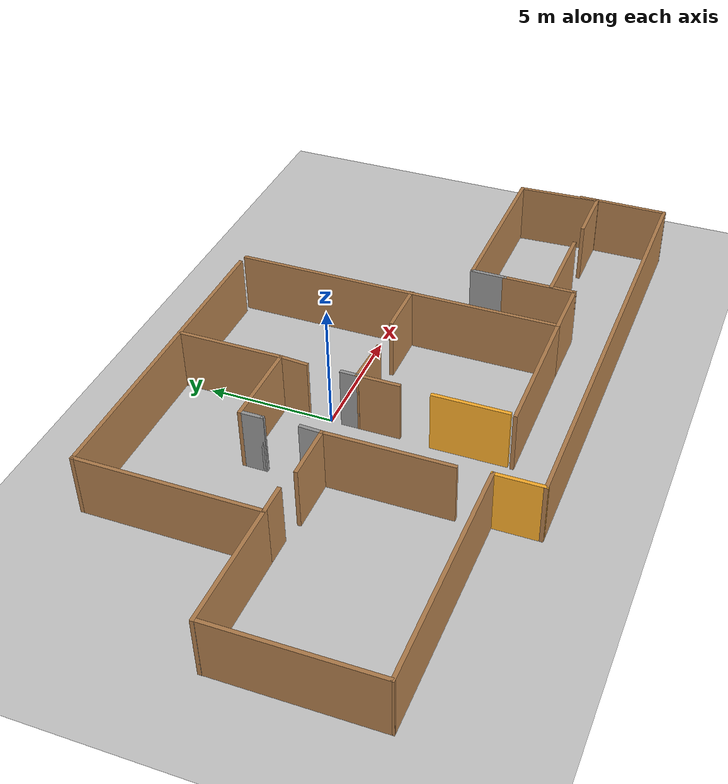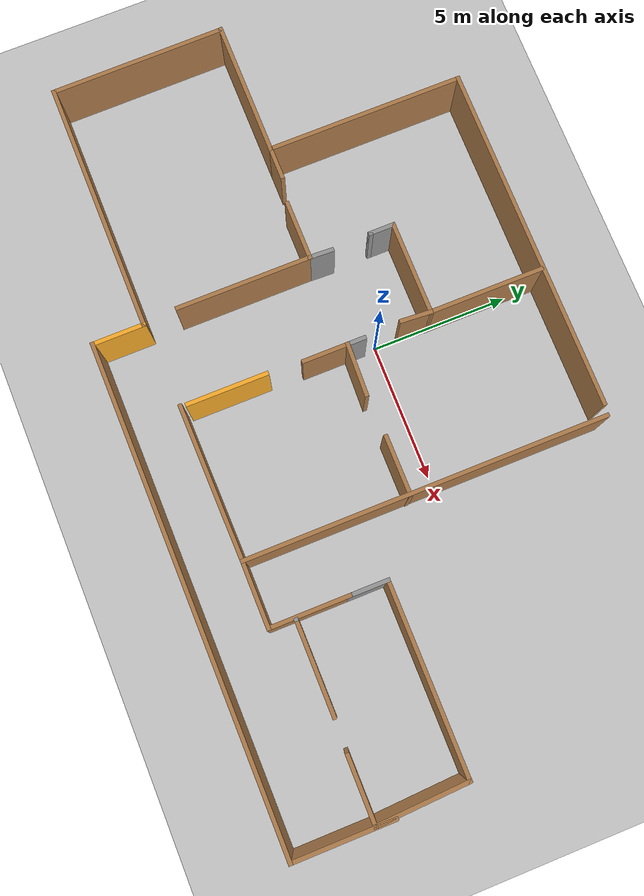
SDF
<sdf version="1.6">
 <world name="default">
  <light name="sun" type="directional">
   <pose>0 0 10 0 -0 0</pose>
   <diffuse>0.8 0.8 0.8 1</diffuse>
   <specular>0.2 0.2 0.2 1</specular>
   <attenuation>
    <range>1000</range>
    <constant>0.9</constant>
    <linear>0.01</linear>
    <quadratic>0.001</quadratic>
   </attenuation>
   <direction>-0.5 0.1 -0.9</direction>
  </light>
  <model name="ground_plane">
   <static>1</static>
   <link name="link">
    <collision name="collision">
     <geometry><plane><normal>0 0 1</normal><size>100 100</size></plane></geometry>
     <surface><friction><ode><mu>100</mu><mu2>50</mu2></ode></friction></surface>
    </collision>
    <visual name="visual">
     <cast_shadows>0</cast_shadows>
     <geometry><plane><normal>0 0 1</normal><size>100 100</size></plane></geometry>
     <material>
      <script><uri>file://media/materials/scripts/gazebo.material</uri><name>Gazebo/Grey</name></script>
     </material>
    </visual>
   </link>
  </model>
  <gravity>0 0 -9.8</gravity>
  <magnetic_field>6e-06 2.3e-05 -4.2e-05</magnetic_field>
  <atmosphere type="adiabatic"/>
  <physics name="default_physics" default="0" type="ode">
   <max_step_size>0.001</max_step_size>
   <real_time_factor>1</real_time_factor>
   <real_time_update_rate>1000</real_time_update_rate>
  </physics>
  <scene><ambient>0.4 0.4 0.4 1</ambient><background>0.7 0.7 0.7 1</background><shadows>1</shadows></scene>
  <spherical_coordinates>
   <surface_model>EARTH_WGS84</surface_model>
   <latitude_deg>0</latitude_deg>
   <longitude_deg>0</longitude_deg>
   <elevation>0</elevation>
   <heading_deg>0</heading_deg>
  </spherical_coordinates>
  <model name="final_world">
   <pose>1.30105 -1.49251 0 0 -0 0</pose>
   <link name="Wall_0">
    <collision name="Wall_0_Collision">
     <geometry><box><size>12.75 0.15 2.5</size></box></geometry>
     <pose>0 0 1.25 0 -0 0</pose>
    </collision>
    <visual name="Wall_0_Visual">
     <pose>0 0 1.25 0 -0 0</pose>
     <geometry><box><size>12.75 0.15 2.5</size></box></geometry>
     <material>
      <script><uri>file://media/materials/scripts/gazebo.material</uri><name>Gazebo/Wood</name></script>
      <ambient>1 1 1 1</ambient>
     </material>
     <meta><layer>0</layer></meta>
    </visual>
    <pose>-2.4746 7.62629 0 0 -0 3.14159</pose>
   </link>
   <link name="Wall_1">
    <collision name="Wall_1_Collision">
     <geometry><box><size>7.25 0.15 2.5</size></box></geometry>
     <pose>0 0 1.25 0 -0 0</pose>
    </collision>
    <visual name="Wall_1_Visual">
     <pose>0 0 1.25 0 -0 0</pose>
     <geometry><box><size>7.25 0.15 2.5</size></box></geometry>
     <material>
      <script><uri>file://media/materials/scripts/gazebo.material</uri><name>Gazebo/Wood</name></script>
      <ambient>1 1 1 1</ambient>
     </material>
     <meta><layer>0</layer></meta>
    </visual>
    <pose>-8.7746 4.07629 0 0 0 -1.5708</pose>
   </link>
   <link name="Wall_10">
    <collision name="Wall_10_Collision">
     <geometry><box><size>13.25 0.15 2.5</size></box></geometry>
     <pose>0 0 1.25 0 -0 0</pose>
    </collision>
    <visual name="Wall_10_Visual">
     <pose>0 0 1.25 0 -0 0</pose>
     <geometry><box><size>13.25 0.15 2.5</size></box></geometry>
     <material>
      <script><uri>file://media/materials/scripts/gazebo.material</uri><name>Gazebo/Wood</name></script>
      <ambient>1 1 1 1</ambient>
     </material>
     <meta><layer>0</layer></meta>
    </visual>
    <pose>4.22995 0.995383 0 0 0 -1.5708</pose>
   </link>
   <link name="Wall_16">
    <collision name="Wall_16_Collision">
     <geometry><box><size>2.25 0.15 2.5</size></box></geometry>
     <pose>0 0 1.25 0 -0 0</pose>
    </collision>
    <visual name="Wall_16_Visual">
     <pose>0 0 1.25 0 -0 0</pose>
     <geometry><box><size>2.25 0.15 2.5</size></box></geometry>
     <material>
      <script><uri>file://media/materials/scripts/gazebo.material</uri><name>Gazebo/Wood</name></script>
      <ambient>1 1 1 1</ambient>
     </material>
     <meta><layer>0</layer></meta>
    </visual>
    <pose>3.19936 0.396644 0 0 -0 3.14159</pose>
   </link>
   <link name="Wall_18">
    <collision name="Wall_18_Collision">
     <geometry><box><size>2.00134 0.15 2.5</size></box></geometry>
     <pose>0 0 1.25 0 -0 0</pose>
    </collision>
    <visual name="Wall_18_Visual">
     <pose>0 0 1.25 0 -0 0</pose>
     <geometry><box><size>2.00134 0.15 2.5</size></box></geometry>
     <material>
      <script><uri>file://media/materials/scripts/gazebo.material</uri><name>Gazebo/Wood</name></script>
      <ambient>1 1 1 1</ambient>
     </material>
     <meta><layer>0</layer></meta>
    </visual>
    <pose>-0.34871 0.361465 0 0 0 -0.038013</pose>
   </link>
   <link name="Wall_2">
    <collision name="Wall_2_Collision">
     <geometry><box><size>1.25 0.15 2.5</size></box></geometry>
     <pose>0 0 1.25 0 -0 0</pose>
    </collision>
    <visual name="Wall_2_Visual">
     <pose>0 0 1.25 0 -0 0</pose>
     <geometry><box><size>1.25 0.15 2.5</size></box></geometry>
     <material>
      <script><uri>file://media/materials/scripts/gazebo.material</uri><name>Gazebo/Wood</name></script>
      <ambient>1 1 1 1</ambient>
     </material>
     <meta><layer>0</layer></meta>
    </visual>
    <pose>-8.22461 0.526294 0 0 -0 0</pose>
   </link>
   <link name="Wall_22">
    <collision name="Wall_22_Collision">
     <geometry><box><size>2.25 0.15 2.5</size></box></geometry>
     <pose>0 0 1.25 0 -0 0</pose>
    </collision>
    <visual name="Wall_22_Visual">
     <pose>0 0 1.25 0 -0 0</pose>
     <geometry><box><size>2.25 0.15 2.5</size></box></geometry>
     <material>
      <script><uri>file://media/materials/scripts/gazebo.material</uri><name>Gazebo/Wood</name></script>
      <ambient>1 1 1 1</ambient>
     </material>
     <meta><layer>0</layer></meta>
    </visual>
    <pose>-5.64874 0.337631 0 0 -0 0</pose>
   </link>
   <link name="Wall_23">
    <collision name="Wall_23_Collision">
     <geometry><box><size>0.954246 0.15 2.5</size></box></geometry>
     <pose>0 0 1.25 0 -0 0</pose>
    </collision>
    <visual name="Wall_23_Visual">
     <pose>0 0 1.25 0 -0 0</pose>
     <geometry><box><size>0.954246 0.15 2.5</size></box></geometry>
     <material>
      <script><uri>file://media/materials/scripts/gazebo.material</uri><name>Gazebo/Grey</name></script>
      <ambient>1 1 1 1</ambient>
     </material>
     <meta><layer>0</layer></meta>
    </visual>
    <pose>-4.58115 0.73937 0 0 -0 1.52704</pose>
   </link>
   <link name="Wall_25">
    <collision name="Wall_25_Collision">
     <geometry><box><size>1.19603 0.15 2.5</size></box></geometry>
     <pose>0 0 1.25 0 -0 0</pose>
    </collision>
    <visual name="Wall_25_Visual">
     <pose>0 0 1.25 0 -0 0</pose>
     <geometry><box><size>1.19603 0.15 2.5</size></box></geometry>
     <material>
      <script><uri>file://media/materials/scripts/gazebo.material</uri><name>Gazebo/Wood</name></script>
      <ambient>1 1 1 1</ambient>
     </material>
     <meta><layer>0</layer></meta>
    </visual>
    <pose>-1.30804 2.92361 0 0 -0 1.50185</pose>
   </link>
   <link name="Wall_27">
    <collision name="Wall_27_Collision">
     <geometry><box><size>0.75 0.15 2.5</size></box></geometry>
     <pose>0 0 1.25 0 -0 0</pose>
    </collision>
    <visual name="Wall_27_Visual">
     <pose>0 0 1.25 0 -0 0</pose>
     <geometry><box><size>0.75 0.15 2.5</size></box></geometry>
     <material>
      <script><uri>file://media/materials/scripts/gazebo.material</uri><name>Gazebo/Grey</name></script>
      <ambient>1 1 1 1</ambient>
     </material>
     <meta><layer>0</layer></meta>
    </visual>
    <pose>-1.27371 0.696644 0 0 -0 1.5708</pose>
   </link>
   <link name="Wall_29">
    <collision name="Wall_29_Collision">
     <geometry><box><size>1.75 0.15 2.5</size></box></geometry>
     <pose>0 0 1.25 0 -0 0</pose>
    </collision>
    <visual name="Wall_29_Visual">
     <pose>0 0 1.25 0 -0 0</pose>
     <geometry><box><size>1.75 0.15 2.5</size></box></geometry>
     <material>
      <script><uri>file://media/materials/scripts/gazebo.material</uri><name>Gazebo/Wood</name></script>
      <ambient>1 1 1 1</ambient>
     </material>
     <meta><layer>0</layer></meta>
    </visual>
    <pose>-1.27371 -0.403356 0 0 0 -1.5708</pose>
   </link>
   <link name="Wall_31">
    <collision name="Wall_31_Collision">
     <geometry><box><size>3 0.15 2.5</size></box></geometry>
     <pose>0 0 1.25 0 -0 0</pose>
    </collision>
    <visual name="Wall_31_Visual">
     <pose>0 0 1.25 0 -0 0</pose>
     <geometry><box><size>3 0.15 2.5</size></box></geometry>
     <material>
      <script><uri>file://media/materials/scripts/gazebo.material</uri><name>Gazebo/Grey</name></script>
      <ambient>1 0.694118 0.168627 1</ambient>
     </material>
     <meta><layer>0</layer></meta>
    </visual>
    <pose>-1.34407 -3.95194 0 0 0 -1.5708</pose>
   </link>
   <link name="Wall_33">
    <collision name="Wall_33_Collision">
     <geometry><box><size>5.75957 0.15 2.5</size></box></geometry>
     <pose>0 0 1.25 0 -0 0</pose>
    </collision>
    <visual name="Wall_33_Visual">
     <pose>0 0 1.25 0 -0 0</pose>
     <geometry><box><size>5.75957 0.15 2.5</size></box></geometry>
     <material>
      <script><uri>file://media/materials/scripts/gazebo.material</uri><name>Gazebo/Wood</name></script>
      <ambient>1 1 1 1</ambient>
     </material>
     <meta><layer>0</layer></meta>
    </visual>
    <pose>1.42535 -5.58677 0 0 -0 0.011464</pose>
   </link>
   <link name="Wall_37">
    <collision name="Wall_37_Collision">
     <geometry><box><size>5 0.15 2.5</size></box></geometry>
     <pose>0 0 1.25 0 -0 0</pose>
    </collision>
    <visual name="Wall_37_Visual">
     <pose>0 0 1.25 0 -0 0</pose>
     <geometry><box><size>5 0.15 2.5</size></box></geometry>
     <material>
      <script><uri>file://media/materials/scripts/gazebo.material</uri><name>Gazebo/Wood</name></script>
      <ambient>1 1 1 1</ambient>
     </material>
     <meta><layer>0</layer></meta>
    </visual>
    <pose>-4.59874 -2.08737 0 0 0 -1.5708</pose>
   </link>
   <link name="Wall_39">
    <collision name="Wall_39_Collision">
     <geometry><box><size>9.25 0.15 2.5</size></box></geometry>
     <pose>0 0 1.25 0 -0 0</pose>
    </collision>
    <visual name="Wall_39_Visual">
     <pose>0 0 1.25 0 -0 0</pose>
     <geometry><box><size>9.25 0.15 2.5</size></box></geometry>
     <material>
      <script><uri>file://media/materials/scripts/gazebo.material</uri><name>Gazebo/Wood</name></script>
      <ambient>1 0.694118 0.168627 1</ambient>
     </material>
     <meta><layer>0</layer></meta>
    </visual>
    <pose>-9.02907 -5.77608 0 0 -0 3.14159</pose>
   </link>
   <link name="Wall_41">
    <collision name="Wall_41_Collision">
     <geometry><box><size>5 0.15 2.5</size></box></geometry>
     <pose>0 0 1.25 0 -0 0</pose>
    </collision>
    <visual name="Wall_41_Visual">
     <pose>0 0 1.25 0 -0 0</pose>
     <geometry><box><size>5 0.15 2.5</size></box></geometry>
     <material>
      <script><uri>file://media/materials/scripts/gazebo.material</uri><name>Gazebo/Wood</name></script>
      <ambient>1 1 1 1</ambient>
     </material>
     <meta><layer>0</layer></meta>
    </visual>
    <pose>-11.1996 0.526294 0 0 -0 3.14159</pose>
   </link>
   <link name="Wall_42">
    <collision name="Wall_42_Collision">
     <geometry><box><size>0.16 0.15 2.5</size></box></geometry>
     <pose>0 0 1.25 0 -0 0</pose>
    </collision>
    <visual name="Wall_42_Visual">
     <pose>0 0 1.25 0 -0 0</pose>
     <geometry><box><size>0.16 0.15 2.5</size></box></geometry>
     <material>
      <script><uri>file://media/materials/scripts/gazebo.material</uri><name>Gazebo/Grey</name></script>
      <ambient>1 1 1 1</ambient>
     </material>
     <meta><layer>0</layer></meta>
    </visual>
    <pose>-13.6196 0.526294 0 0 -0 0</pose>
   </link>
   <link name="Wall_43">
    <collision name="Wall_43_Collision">
     <geometry><box><size>6.45247 0.15 2.5</size></box></geometry>
     <pose>0 0 1.25 0 -0 0</pose>
    </collision>
    <visual name="Wall_43_Visual">
     <pose>0 0 1.25 0 -0 0</pose>
     <geometry><box><size>6.45247 0.15 2.5</size></box></geometry>
     <material>
      <script><uri>file://media/materials/scripts/gazebo.material</uri><name>Gazebo/Wood</name></script>
      <ambient>1 1 1 1</ambient>
     </material>
     <meta><layer>0</layer></meta>
    </visual>
    <pose>-13.5968 -2.62489 0 0 0 -1.56516</pose>
   </link>
   <link name="Wall_45">
    <collision name="Wall_45_Collision">
     <geometry><box><size>2 0.15 2.5</size></box></geometry>
     <pose>0 0 1.25 0 -0 0</pose>
    </collision>
    <visual name="Wall_45_Visual">
     <pose>0 0 1.25 0 -0 0</pose>
     <geometry><box><size>2 0.15 2.5</size></box></geometry>
     <material>
      <script><uri>file://media/materials/scripts/gazebo.material</uri><name>Gazebo/Grey</name></script>
      <ambient>1 0.694118 0.168627 1</ambient>
     </material>
     <meta><layer>0</layer></meta>
    </visual>
    <pose>-4.47907 -6.70108 0 0 0 -1.5708</pose>
   </link>
   <link name="Wall_46">
    <collision name="Wall_46_Collision">
     <geometry><box><size>18.2538 0.15 2.5</size></box></geometry>
     <pose>0 0 1.25 0 -0 0</pose>
    </collision>
    <visual name="Wall_46_Visual">
     <pose>0 0 1.25 0 -0 0</pose>
     <geometry><box><size>18.2538 0.15 2.5</size></box></geometry>
     <material>
      <script><uri>file://media/materials/scripts/gazebo.material</uri><name>Gazebo/Wood</name></script>
      <ambient>1 1 1 1</ambient>
     </material>
     <meta><layer>0</layer></meta>
    </visual>
    <pose>4.57251 -7.59984 0 0 -0 0.002898</pose>
   </link>
   <link name="Wall_47">
    <collision name="Wall_47_Collision">
     <geometry><box><size>3.75 0.15 2.5</size></box></geometry>
     <pose>0 0 1.25 0 -0 0</pose>
    </collision>
    <visual name="Wall_47_Visual">
     <pose>0 0 1.25 0 -0 0</pose>
     <geometry><box><size>3.75 0.15 2.5</size></box></geometry>
     <material>
      <script><uri>file://media/materials/scripts/gazebo.material</uri><name>Gazebo/Wood</name></script>
      <ambient>1 1 1 1</ambient>
     </material>
     <meta><layer>0</layer></meta>
    </visual>
    <pose>13.6241 -5.77361 0 0 -0 1.5708</pose>
   </link>
   <link name="Wall_49">
    <collision name="Wall_49_Collision">
     <geometry><box><size>2.5 0.15 2.5</size></box></geometry>
     <pose>0 0 1.25 0 -0 0</pose>
    </collision>
    <visual name="Wall_49_Visual">
     <pose>0 0 1.25 0 -0 0</pose>
     <geometry><box><size>2.5 0.15 2.5</size></box></geometry>
     <material>
      <script><uri>file://media/materials/scripts/gazebo.material</uri><name>Gazebo/Wood</name></script>
      <ambient>1 1 1 1</ambient>
     </material>
     <meta><layer>0</layer></meta>
    </visual>
    <pose>5.40495 -5.55462 0 0 -0 0</pose>
   </link>
   <link name="Wall_5">
    <collision name="Wall_5_Collision">
     <geometry><box><size>4.25 0.15 2.5</size></box></geometry>
     <pose>0 0 1.25 0 -0 0</pose>
    </collision>
    <visual name="Wall_5_Visual">
     <pose>0 0 1.25 0 -0 0</pose>
     <geometry><box><size>4.25 0.15 2.5</size></box></geometry>
     <material>
      <script><uri>file://media/materials/scripts/gazebo.material</uri><name>Gazebo/Wood</name></script>
      <ambient>1 1 1 1</ambient>
     </material>
     <meta><layer>0</layer></meta>
    </visual>
    <pose>-1.27201 5.49538 0 0 0 -1.5708</pose>
   </link>
   <link name="Wall_50">
    <collision name="Wall_50_Collision">
     <geometry><box><size>3 0.15 2.5</size></box></geometry>
     <pose>0 0 1.25 0 -0 0</pose>
    </collision>
    <visual name="Wall_50_Visual">
     <pose>0 0 1.25 0 -0 0</pose>
     <geometry><box><size>3 0.15 2.5</size></box></geometry>
     <material>
      <script><uri>file://media/materials/scripts/gazebo.material</uri><name>Gazebo/Wood</name></script>
      <ambient>1 1 1 1</ambient>
     </material>
     <meta><layer>0</layer></meta>
    </visual>
    <pose>6.57995 -4.12962 0 0 -0 1.5708</pose>
   </link>
   <link name="Wall_52">
    <collision name="Wall_52_Collision">
     <geometry><box><size>0.16 0.15 2.5</size></box></geometry>
     <pose>0 0 1.25 0 -0 0</pose>
    </collision>
    <visual name="Wall_52_Visual">
     <pose>0 0 1.25 0 -0 0</pose>
     <geometry><box><size>0.16 0.15 2.5</size></box></geometry>
     <material>
      <script><uri>file://media/materials/scripts/gazebo.material</uri><name>Gazebo/Grey</name></script>
      <ambient>1 1 1 1</ambient>
     </material>
     <meta><layer>0</layer></meta>
    </visual>
    <pose>6.63122 -4.61757 0 0 -0 0</pose>
   </link>
   <link name="Wall_53">
    <collision name="Wall_53_Collision">
     <geometry><box><size>3.5 0.15 2.5</size></box></geometry>
     <pose>0 0 1.25 0 -0 0</pose>
    </collision>
    <visual name="Wall_53_Visual">
     <pose>0 0 1.25 0 -0 0</pose>
     <geometry><box><size>3.5 0.15 2.5</size></box></geometry>
     <material>
      <script><uri>file://media/materials/scripts/gazebo.material</uri><name>Gazebo/Wood</name></script>
      <ambient>1 1 1 1</ambient>
     </material>
     <meta><layer>0</layer></meta>
    </visual>
    <pose>8.31122 -4.61757 0 0 -0 0</pose>
   </link>
   <link name="Wall_55">
    <collision name="Wall_55_Collision">
     <geometry><box><size>1.5 0.15 2.5</size></box></geometry>
     <pose>0 0 1.25 0 -0 0</pose>
    </collision>
    <visual name="Wall_55_Visual">
     <pose>0 0 1.25 0 -0 0</pose>
     <geometry><box><size>1.5 0.15 2.5</size></box></geometry>
     <material>
      <script><uri>file://media/materials/scripts/gazebo.material</uri><name>Gazebo/Grey</name></script>
      <ambient>1 1 1 1</ambient>
     </material>
     <meta><layer>0</layer></meta>
    </visual>
    <pose>6.57995 -2.02962 0 0 -0 1.5708</pose>
   </link>
   <link name="Wall_56">
    <collision name="Wall_56_Collision">
     <geometry><box><size>7 0.15 2.5</size></box></geometry>
     <pose>0 0 1.25 0 -0 0</pose>
    </collision>
    <visual name="Wall_56_Visual">
     <pose>0 0 1.25 0 -0 0</pose>
     <geometry><box><size>7 0.15 2.5</size></box></geometry>
     <material>
      <script><uri>file://media/materials/scripts/gazebo.material</uri><name>Gazebo/Wood</name></script>
      <ambient>1 1 1 1</ambient>
     </material>
     <meta><layer>0</layer></meta>
    </visual>
    <pose>10.005 -1.35462 0 0 -0 0</pose>
   </link>
   <link name="Wall_57">
    <collision name="Wall_57_Collision">
     <geometry><box><size>3.46362 0.15 2.5</size></box></geometry>
     <pose>0 0 1.25 0 -0 0</pose>
    </collision>
    <visual name="Wall_57_Visual">
     <pose>0 0 1.25 0 -0 0</pose>
     <geometry><box><size>3.46362 0.15 2.5</size></box></geometry>
     <material>
      <script><uri>file://media/materials/scripts/gazebo.material</uri><name>Gazebo/Wood</name></script>
      <ambient>1 1 1 1</ambient>
     </material>
     <meta><layer>0</layer></meta>
    </visual>
    <pose>13.5087 -3.00956 0 0 0 -1.52327</pose>
   </link>
   <link name="Wall_58">
    <collision name="Wall_58_Collision">
     <geometry><box><size>2.5 0.15 2.5</size></box></geometry>
     <pose>0 0 1.25 0 -0 0</pose>
    </collision>
    <visual name="Wall_58_Visual">
     <pose>0 0 1.25 0 -0 0</pose>
     <geometry><box><size>2.5 0.15 2.5</size></box></geometry>
     <material>
      <script><uri>file://media/materials/scripts/gazebo.material</uri><name>Gazebo/Wood</name></script>
      <ambient>1 1 1 1</ambient>
     </material>
     <meta><layer>0</layer></meta>
    </visual>
    <pose>12.4124 -4.6645 0 0 -0 3.14159</pose>
   </link>
   <link name="Wall_6">
    <collision name="Wall_6_Collision">
     <geometry><box><size>3.5 0.15 2.5</size></box></geometry>
     <pose>0 0 1.25 0 -0 0</pose>
    </collision>
    <visual name="Wall_6_Visual">
     <pose>0 0 1.25 0 -0 0</pose>
     <geometry><box><size>3.5 0.15 2.5</size></box></geometry>
     <material>
      <script><uri>file://media/materials/scripts/gazebo.material</uri><name>Gazebo/Wood</name></script>
      <ambient>1 1 1 1</ambient>
     </material>
     <meta><layer>0</layer></meta>
    </visual>
    <pose>-2.94701 3.44538 0 0 -0 3.14159</pose>
   </link>
   <link name="Wall_7">
    <collision name="Wall_7_Collision">
     <geometry><box><size>1 0.15 2.5</size></box></geometry>
     <pose>0 0 1.25 0 -0 0</pose>
    </collision>
    <visual name="Wall_7_Visual">
     <pose>0 0 1.25 0 -0 0</pose>
     <geometry><box><size>1 0.15 2.5</size></box></geometry>
     <material>
      <script><uri>file://media/materials/scripts/gazebo.material</uri><name>Gazebo/Grey</name></script>
      <ambient>1 1 1 1</ambient>
     </material>
     <meta><layer>0</layer></meta>
    </visual>
    <pose>-4.62201 3.02038 0 0 0 -1.5708</pose>
   </link>
   <link name="Wall_8">
    <collision name="Wall_8_Collision">
     <geometry><box><size>0.15 0.15 2.5</size></box></geometry>
     <pose>0 0 1.25 0 -0 0</pose>
    </collision>
    <visual name="Wall_8_Visual">
     <pose>0 0 1.25 0 -0 0</pose>
     <geometry><box><size>0.15 0.15 2.5</size></box></geometry>
     <material>
      <script><uri>file://media/materials/scripts/gazebo.material</uri><name>Gazebo/Grey</name></script>
      <ambient>1 1 1 1</ambient>
     </material>
     <meta><layer>0</layer></meta>
    </visual>
    <pose>-4.62201 2.59538 0 0 -0 0</pose>
   </link>
   <static>1</static>
  </model>
 </world>
</sdf>
